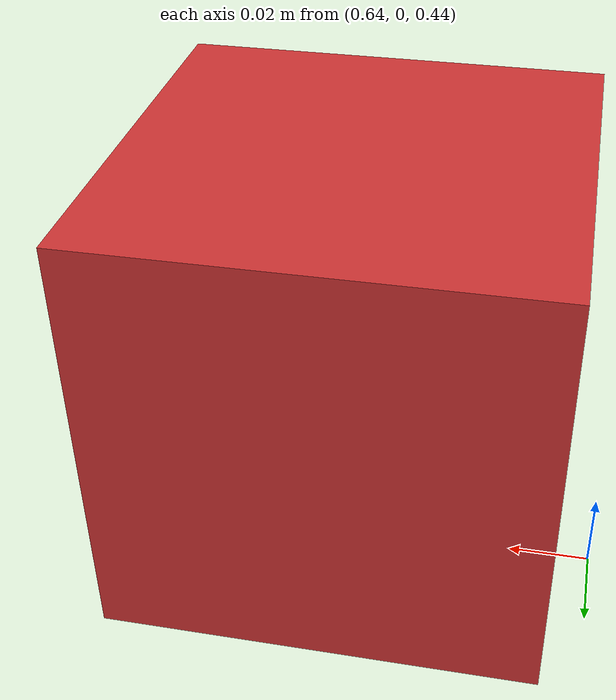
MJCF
<mujoco model="box">
  <asset>
    <material name="box_material" rgba="0.8 0.2 0.2 1"/>
  </asset>

  <worldbody>
    <body name="moving_box" pos="0.7 0 0.5" quat="1 0 0 0">
      <geom name="box_geom" type="box" size="0.05 0.05 0.05" material="box_material" density="1000"/>
      <joint name="box_joint" type="free"/>
    </body>
  </worldbody>
</mujoco>
